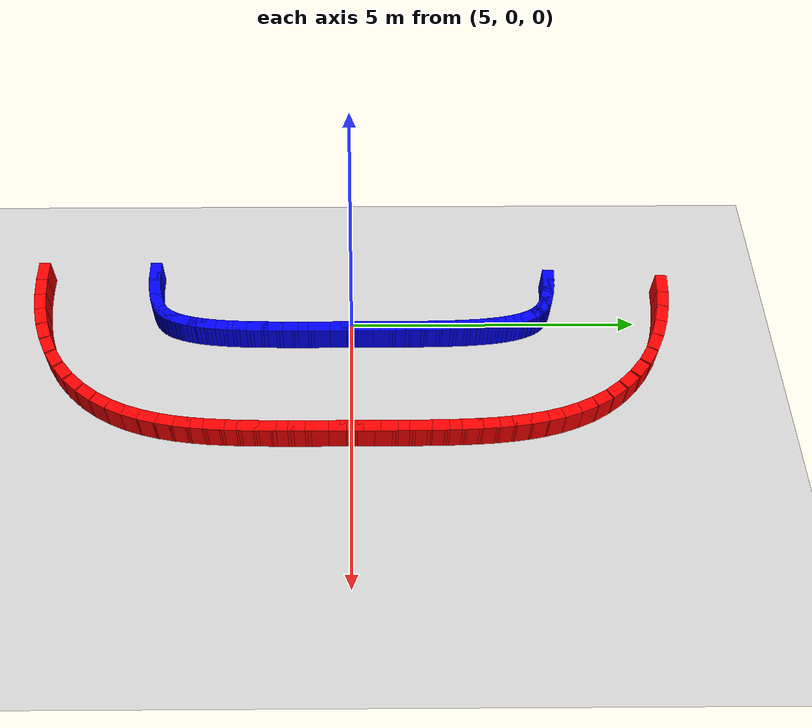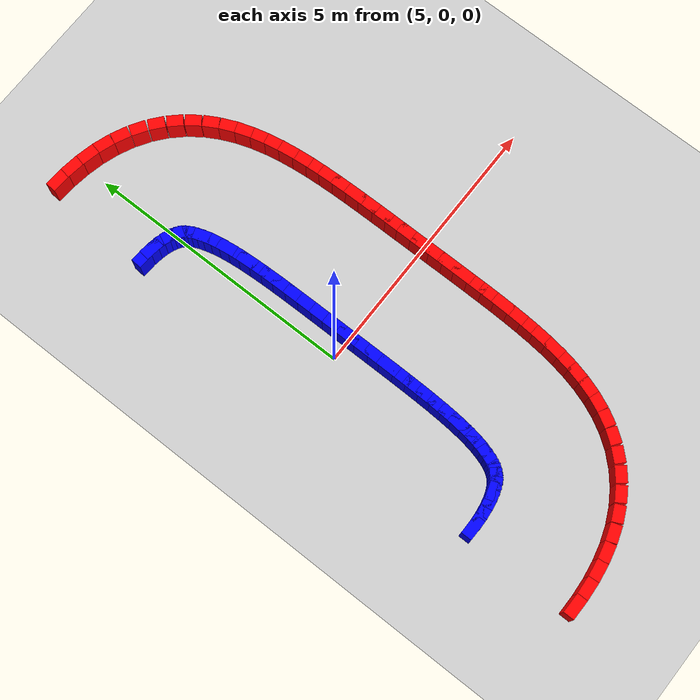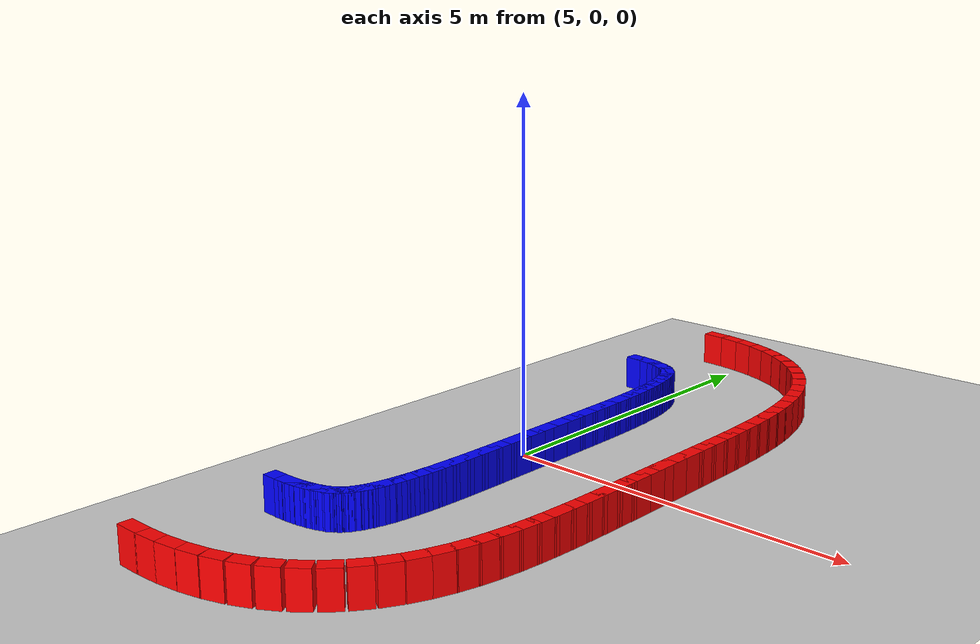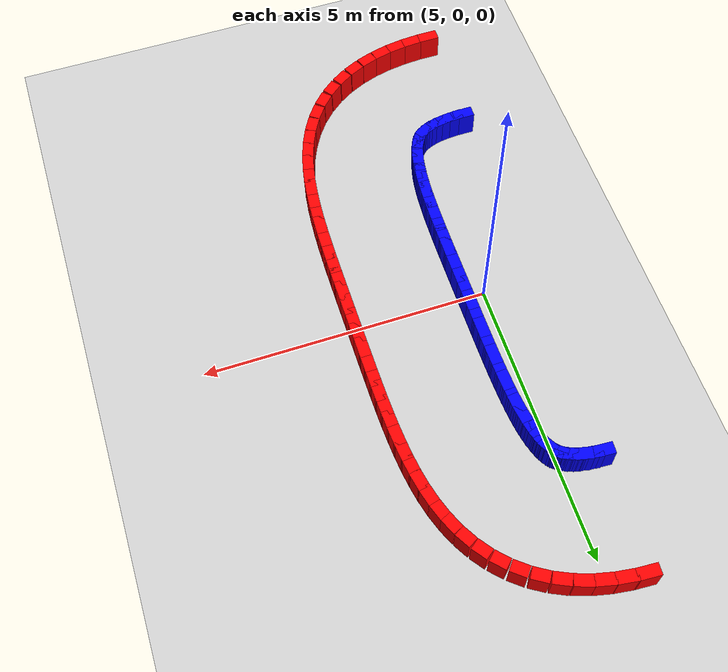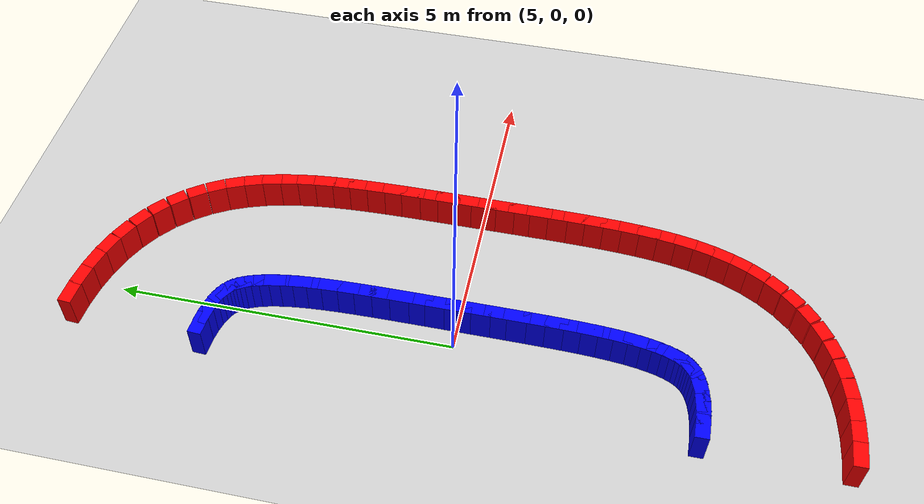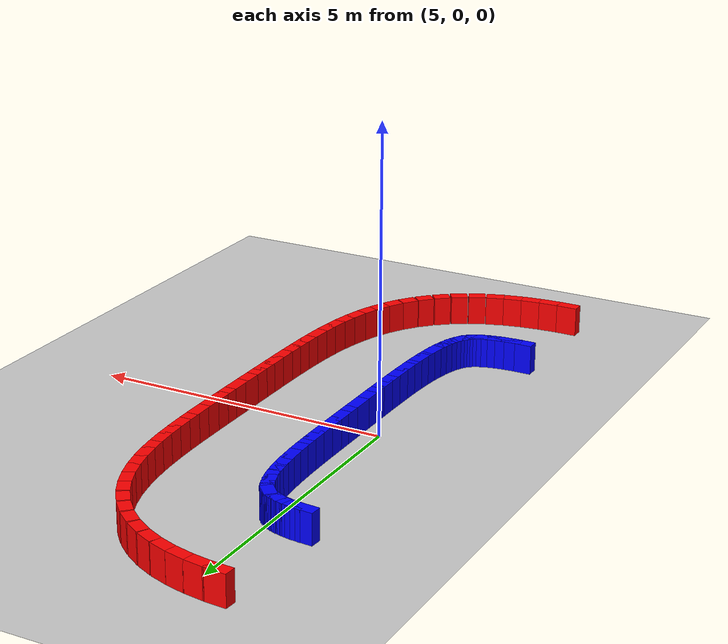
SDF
<sdf version="1.9">
 <world name="kidney_track">
  <model name="ground_plane">
   <static>true</static>
   <link name="link">
    <collision name="collision">
     <geometry><plane><normal>0 0 1</normal><size>100 100</size></plane></geometry>
    </collision>
    <visual name="visual">
     <geometry><plane><normal>0 0 1</normal><size>100 100</size></plane></geometry>
     <material><ambient>0.8 0.8 0.8 1</ambient><diffuse>0.8 0.8 0.8 1</diffuse></material>
    </visual>
   </link>
  </model>
  <model name="track">
   <static>true</static>
   <link name="outer_0">
    <pose>7.3750 0.0000 0.25 0 0 1.5708</pose>
    <collision name="col"><geometry><box><size>0.3826 0.2 0.5</size></box></geometry></collision>
    <visual name="vis">
     <geometry><box><size>0.3826 0.2 0.5</size></box></geometry>
     <material><ambient>1 0 0 1</ambient></material>
    </visual>
   </link>
   <link name="inner_0">
    <pose>5.3750 0.0000 0.25 0 0 1.5708</pose>
    <collision name="col"><geometry><box><size>0.3826 0.2 0.5</size></box></geometry></collision>
    <visual name="vis">
     <geometry><box><size>0.3826 0.2 0.5</size></box></geometry>
     <material><ambient>0 0 1 1</ambient></material>
    </visual>
   </link>
   <link name="outer_1">
    <pose>7.3750 0.2827 0.25 0 0 1.5709</pose>
    <collision name="col"><geometry><box><size>0.3814 0.2 0.5</size></box></geometry></collision>
    <visual name="vis">
     <geometry><box><size>0.3814 0.2 0.5</size></box></geometry>
     <material><ambient>1 0 0 1</ambient></material>
    </visual>
   </link>
   <link name="inner_1">
    <pose>5.3750 0.2824 0.25 0 0 1.5709</pose>
    <collision name="col"><geometry><box><size>0.3814 0.2 0.5</size></box></geometry></collision>
    <visual name="vis">
     <geometry><box><size>0.3814 0.2 0.5</size></box></geometry>
     <material><ambient>0 0 1 1</ambient></material>
    </visual>
   </link>
   <link name="outer_2">
    <pose>7.3749 0.5650 0.25 0 0 1.5718</pose>
    <collision name="col"><geometry><box><size>0.3792 0.2 0.5</size></box></geometry></collision>
    <visual name="vis">
     <geometry><box><size>0.3792 0.2 0.5</size></box></geometry>
     <material><ambient>1 0 0 1</ambient></material>
    </visual>
   </link>
   <link name="inner_2">
    <pose>5.3749 0.5630 0.25 0 0 1.5718</pose>
    <collision name="col"><geometry><box><size>0.3792 0.2 0.5</size></box></geometry></collision>
    <visual name="vis">
     <geometry><box><size>0.3792 0.2 0.5</size></box></geometry>
     <material><ambient>0 0 1 1</ambient></material>
    </visual>
   </link>
   <link name="outer_3">
    <pose>7.3743 0.8466 0.25 0 0 1.5742</pose>
    <collision name="col"><geometry><box><size>0.3759 0.2 0.5</size></box></geometry></collision>
    <visual name="vis">
     <geometry><box><size>0.3759 0.2 0.5</size></box></geometry>
     <material><ambient>1 0 0 1</ambient></material>
    </visual>
   </link>
   <link name="inner_3">
    <pose>5.3743 0.8398 0.25 0 0 1.5742</pose>
    <collision name="col"><geometry><box><size>0.3759 0.2 0.5</size></box></geometry></collision>
    <visual name="vis">
     <geometry><box><size>0.3759 0.2 0.5</size></box></geometry>
     <material><ambient>0 0 1 1</ambient></material>
    </visual>
   </link>
   <link name="outer_4">
    <pose>7.3727 1.1272 0.25 0 0 1.5789</pose>
    <collision name="col"><geometry><box><size>0.3715 0.2 0.5</size></box></geometry></collision>
    <visual name="vis">
     <geometry><box><size>0.3715 0.2 0.5</size></box></geometry>
     <material><ambient>1 0 0 1</ambient></material>
    </visual>
   </link>
   <link name="inner_4">
    <pose>5.3728 1.1110 0.25 0 0 1.5789</pose>
    <collision name="col"><geometry><box><size>0.3715 0.2 0.5</size></box></geometry></collision>
    <visual name="vis">
     <geometry><box><size>0.3715 0.2 0.5</size></box></geometry>
     <material><ambient>0 0 1 1</ambient></material>
    </visual>
   </link>
   <link name="outer_5">
    <pose>7.3695 1.4065 0.25 0 0 1.5867</pose>
    <collision name="col"><geometry><box><size>0.3660 0.2 0.5</size></box></geometry></collision>
    <visual name="vis">
     <geometry><box><size>0.3660 0.2 0.5</size></box></geometry>
     <material><ambient>1 0 0 1</ambient></material>
    </visual>
   </link>
   <link name="inner_5">
    <pose>5.3697 1.3747 0.25 0 0 1.5867</pose>
    <collision name="col"><geometry><box><size>0.3660 0.2 0.5</size></box></geometry></collision>
    <visual name="vis">
     <geometry><box><size>0.3660 0.2 0.5</size></box></geometry>
     <material><ambient>0 0 1 1</ambient></material>
    </visual>
   </link>
   <link name="outer_6">
    <pose>7.3635 1.6844 0.25 0 0 1.5986</pose>
    <collision name="col"><geometry><box><size>0.3596 0.2 0.5</size></box></geometry></collision>
    <visual name="vis">
     <geometry><box><size>0.3596 0.2 0.5</size></box></geometry>
     <material><ambient>1 0 0 1</ambient></material>
    </visual>
   </link>
   <link name="inner_6">
    <pose>5.3643 1.6287 0.25 0 0 1.5986</pose>
    <collision name="col"><geometry><box><size>0.3596 0.2 0.5</size></box></geometry></collision>
    <visual name="vis">
     <geometry><box><size>0.3596 0.2 0.5</size></box></geometry>
     <material><ambient>0 0 1 1</ambient></material>
    </visual>
   </link>
   <link name="outer_7">
    <pose>7.3536 1.9608 0.25 0 0 1.6156</pose>
    <collision name="col"><geometry><box><size>0.3523 0.2 0.5</size></box></geometry></collision>
    <visual name="vis">
     <geometry><box><size>0.3523 0.2 0.5</size></box></geometry>
     <material><ambient>1 0 0 1</ambient></material>
    </visual>
   </link>
   <link name="inner_7">
    <pose>5.3556 1.8712 0.25 0 0 1.6156</pose>
    <collision name="col"><geometry><box><size>0.3523 0.2 0.5</size></box></geometry></collision>
    <visual name="vis">
     <geometry><box><size>0.3523 0.2 0.5</size></box></geometry>
     <material><ambient>0 0 1 1</ambient></material>
    </visual>
   </link>
   <link name="outer_8">
    <pose>7.3383 2.2358 0.25 0 0 1.6387</pose>
    <collision name="col"><geometry><box><size>0.3442 0.2 0.5</size></box></geometry></collision>
    <visual name="vis">
     <geometry><box><size>0.3442 0.2 0.5</size></box></geometry>
     <material><ambient>1 0 0 1</ambient></material>
    </visual>
   </link>
   <link name="inner_8">
    <pose>5.3429 2.1000 0.25 0 0 1.6387</pose>
    <collision name="col"><geometry><box><size>0.3442 0.2 0.5</size></box></geometry></collision>
    <visual name="vis">
     <geometry><box><size>0.3442 0.2 0.5</size></box></geometry>
     <material><ambient>0 0 1 1</ambient></material>
    </visual>
   </link>
   <link name="outer_9">
    <pose>7.3156 2.5096 0.25 0 0 1.6693</pose>
    <collision name="col"><geometry><box><size>0.3354 0.2 0.5</size></box></geometry></collision>
    <visual name="vis">
     <geometry><box><size>0.3354 0.2 0.5</size></box></geometry>
     <material><ambient>1 0 0 1</ambient></material>
    </visual>
   </link>
   <link name="inner_9">
    <pose>5.3253 2.3129 0.25 0 0 1.6693</pose>
    <collision name="col"><geometry><box><size>0.3354 0.2 0.5</size></box></geometry></collision>
    <visual name="vis">
     <geometry><box><size>0.3354 0.2 0.5</size></box></geometry>
     <material><ambient>0 0 1 1</ambient></material>
    </visual>
   </link>
   <link name="outer_10">
    <pose>7.2834 2.7825 0.25 0 0 1.7087</pose>
    <collision name="col"><geometry><box><size>0.3263 0.2 0.5</size></box></geometry></collision>
    <visual name="vis">
     <geometry><box><size>0.3263 0.2 0.5</size></box></geometry>
     <material><ambient>1 0 0 1</ambient></material>
    </visual>
   </link>
   <link name="inner_10">
    <pose>5.3024 2.5076 0.25 0 0 1.7087</pose>
    <collision name="col"><geometry><box><size>0.3263 0.2 0.5</size></box></geometry></collision>
    <visual name="vis">
     <geometry><box><size>0.3263 0.2 0.5</size></box></geometry>
     <material><ambient>0 0 1 1</ambient></material>
    </visual>
   </link>
   <link name="outer_11">
    <pose>7.2390 3.0550 0.25 0 0 1.7584</pose>
    <collision name="col"><geometry><box><size>0.3172 0.2 0.5</size></box></geometry></collision>
    <visual name="vis">
     <geometry><box><size>0.3172 0.2 0.5</size></box></geometry>
     <material><ambient>1 0 0 1</ambient></material>
    </visual>
   </link>
   <link name="inner_11">
    <pose>5.2741 2.6819 0.25 0 0 1.7584</pose>
    <collision name="col"><geometry><box><size>0.3172 0.2 0.5</size></box></geometry></collision>
    <visual name="vis">
     <geometry><box><size>0.3172 0.2 0.5</size></box></geometry>
     <material><ambient>0 0 1 1</ambient></material>
    </visual>
   </link>
   <link name="outer_12">
    <pose>7.1788 3.3271 0.25 0 0 1.8201</pose>
    <collision name="col"><geometry><box><size>0.3083 0.2 0.5</size></box></geometry></collision>
    <visual name="vis">
     <geometry><box><size>0.3083 0.2 0.5</size></box></geometry>
     <material><ambient>1 0 0 1</ambient></material>
    </visual>
   </link>
   <link name="inner_12">
    <pose>5.2406 2.8338 0.25 0 0 1.8201</pose>
    <collision name="col"><geometry><box><size>0.3083 0.2 0.5</size></box></geometry></collision>
    <visual name="vis">
     <geometry><box><size>0.3083 0.2 0.5</size></box></geometry>
     <material><ambient>0 0 1 1</ambient></material>
    </visual>
   </link>
   <link name="outer_13">
    <pose>7.0990 3.5988 0.25 0 0 1.8949</pose>
    <collision name="col"><geometry><box><size>0.3003 0.2 0.5</size></box></geometry></collision>
    <visual name="vis">
     <geometry><box><size>0.3003 0.2 0.5</size></box></geometry>
     <material><ambient>1 0 0 1</ambient></material>
    </visual>
   </link>
   <link name="inner_13">
    <pose>5.2032 2.9619 0.25 0 0 1.8949</pose>
    <collision name="col"><geometry><box><size>0.3003 0.2 0.5</size></box></geometry></collision>
    <visual name="vis">
     <geometry><box><size>0.3003 0.2 0.5</size></box></geometry>
     <material><ambient>0 0 1 1</ambient></material>
    </visual>
   </link>
   <link name="outer_14">
    <pose>6.9951 3.8688 0.25 0 0 1.9839</pose>
    <collision name="col"><geometry><box><size>0.2937 0.2 0.5</size></box></geometry></collision>
    <visual name="vis">
     <geometry><box><size>0.2937 0.2 0.5</size></box></geometry>
     <material><ambient>1 0 0 1</ambient></material>
    </visual>
   </link>
   <link name="inner_14">
    <pose>5.1633 3.0659 0.25 0 0 1.9839</pose>
    <collision name="col"><geometry><box><size>0.2937 0.2 0.5</size></box></geometry></collision>
    <visual name="vis">
     <geometry><box><size>0.2937 0.2 0.5</size></box></geometry>
     <material><ambient>0 0 1 1</ambient></material>
    </visual>
   </link>
   <link name="outer_15">
    <pose>6.8624 4.1341 0.25 0 0 2.0869</pose>
    <collision name="col"><geometry><box><size>0.2891 0.2 0.5</size></box></geometry></collision>
    <visual name="vis">
     <geometry><box><size>0.2891 0.2 0.5</size></box></geometry>
     <material><ambient>1 0 0 1</ambient></material>
    </visual>
   </link>
   <link name="inner_15">
    <pose>5.1229 3.1471 0.25 0 0 2.0869</pose>
    <collision name="col"><geometry><box><size>0.2891 0.2 0.5</size></box></geometry></collision>
    <visual name="vis">
     <geometry><box><size>0.2891 0.2 0.5</size></box></geometry>
     <material><ambient>0 0 1 1</ambient></material>
    </visual>
   </link>
   <link name="outer_16">
    <pose>6.6973 4.3899 0.25 0 0 2.2023</pose>
    <collision name="col"><geometry><box><size>0.2871 0.2 0.5</size></box></geometry></collision>
    <visual name="vis">
     <geometry><box><size>0.2871 0.2 0.5</size></box></geometry>
     <material><ambient>1 0 0 1</ambient></material>
    </visual>
   </link>
   <link name="inner_16">
    <pose>5.0831 3.2091 0.25 0 0 2.2023</pose>
    <collision name="col"><geometry><box><size>0.2871 0.2 0.5</size></box></geometry></collision>
    <visual name="vis">
     <geometry><box><size>0.2871 0.2 0.5</size></box></geometry>
     <material><ambient>0 0 1 1</ambient></material>
    </visual>
   </link>
   <link name="outer_17">
    <pose>6.4983 4.6293 0.25 0 0 2.3267</pose>
    <collision name="col"><geometry><box><size>0.2882 0.2 0.5</size></box></geometry></collision>
    <visual name="vis">
     <geometry><box><size>0.2882 0.2 0.5</size></box></geometry>
     <material><ambient>1 0 0 1</ambient></material>
    </visual>
   </link>
   <link name="inner_17">
    <pose>5.0431 3.2574 0.25 0 0 2.3267</pose>
    <collision name="col"><geometry><box><size>0.2882 0.2 0.5</size></box></geometry></collision>
    <visual name="vis">
     <geometry><box><size>0.2882 0.2 0.5</size></box></geometry>
     <material><ambient>0 0 1 1</ambient></material>
    </visual>
   </link>
   <link name="outer_18">
    <pose>6.2669 4.8452 0.25 0 0 2.4551</pose>
    <collision name="col"><geometry><box><size>0.2926 0.2 0.5</size></box></geometry></collision>
    <visual name="vis">
     <geometry><box><size>0.2926 0.2 0.5</size></box></geometry>
     <material><ambient>1 0 0 1</ambient></material>
    </visual>
   </link>
   <link name="inner_18">
    <pose>4.9993 3.2982 0.25 0 0 2.4551</pose>
    <collision name="col"><geometry><box><size>0.2926 0.2 0.5</size></box></geometry></collision>
    <visual name="vis">
     <geometry><box><size>0.2926 0.2 0.5</size></box></geometry>
     <material><ambient>0 0 1 1</ambient></material>
    </visual>
   </link>
   <link name="outer_19">
    <pose>6.0076 5.0314 0.25 0 0 2.5819</pose>
    <collision name="col"><geometry><box><size>0.3003 0.2 0.5</size></box></geometry></collision>
    <visual name="vis">
     <geometry><box><size>0.3003 0.2 0.5</size></box></geometry>
     <material><ambient>1 0 0 1</ambient></material>
    </visual>
   </link>
   <link name="inner_19">
    <pose>4.9457 3.3366 0.25 0 0 2.5819</pose>
    <collision name="col"><geometry><box><size>0.3003 0.2 0.5</size></box></geometry></collision>
    <visual name="vis">
     <geometry><box><size>0.3003 0.2 0.5</size></box></geometry>
     <material><ambient>0 0 1 1</ambient></material>
    </visual>
   </link>
   <link name="outer_20">
    <pose>5.7262 5.1847 0.25 0 0 2.7021</pose>
    <collision name="col"><geometry><box><size>0.3111 0.2 0.5</size></box></geometry></collision>
    <visual name="vis">
     <geometry><box><size>0.3111 0.2 0.5</size></box></geometry>
     <material><ambient>1 0 0 1</ambient></material>
    </visual>
   </link>
   <link name="inner_20">
    <pose>4.8752 3.3748 0.25 0 0 2.7021</pose>
    <collision name="col"><geometry><box><size>0.3111 0.2 0.5</size></box></geometry></collision>
    <visual name="vis">
     <geometry><box><size>0.3111 0.2 0.5</size></box></geometry>
     <material><ambient>0 0 1 1</ambient></material>
    </visual>
   </link>
   <link name="outer_21">
    <pose>5.4283 5.3049 0.25 0 0 2.8123</pose>
    <collision name="col"><geometry><box><size>0.3244 0.2 0.5</size></box></geometry></collision>
    <visual name="vis">
     <geometry><box><size>0.3244 0.2 0.5</size></box></geometry>
     <material><ambient>1 0 0 1</ambient></material>
    </visual>
   </link>
   <link name="inner_21">
    <pose>4.7816 3.4124 0.25 0 0 2.8123</pose>
    <collision name="col"><geometry><box><size>0.3244 0.2 0.5</size></box></geometry></collision>
    <visual name="vis">
     <geometry><box><size>0.3244 0.2 0.5</size></box></geometry>
     <material><ambient>0 0 1 1</ambient></material>
    </visual>
   </link>
   <link name="outer_22">
    <pose>5.1177 5.3938 0.25 0 0 2.9110</pose>
    <collision name="col"><geometry><box><size>0.3397 0.2 0.5</size></box></geometry></collision>
    <visual name="vis">
     <geometry><box><size>0.3397 0.2 0.5</size></box></geometry>
     <material><ambient>1 0 0 1</ambient></material>
    </visual>
   </link>
   <link name="inner_22">
    <pose>4.6607 3.4468 0.25 0 0 2.9110</pose>
    <collision name="col"><geometry><box><size>0.3397 0.2 0.5</size></box></geometry></collision>
    <visual name="vis">
     <geometry><box><size>0.3397 0.2 0.5</size></box></geometry>
     <material><ambient>0 0 1 1</ambient></material>
    </visual>
   </link>
   <link name="outer_23">
    <pose>4.7966 5.4542 0.25 0 0 2.9982</pose>
    <collision name="col"><geometry><box><size>0.3564 0.2 0.5</size></box></geometry></collision>
    <visual name="vis">
     <geometry><box><size>0.3564 0.2 0.5</size></box></geometry>
     <material><ambient>1 0 0 1</ambient></material>
    </visual>
   </link>
   <link name="inner_23">
    <pose>4.5107 3.4748 0.25 0 0 2.9982</pose>
    <collision name="col"><geometry><box><size>0.3564 0.2 0.5</size></box></geometry></collision>
    <visual name="vis">
     <geometry><box><size>0.3564 0.2 0.5</size></box></geometry>
     <material><ambient>0 0 1 1</ambient></material>
    </visual>
   </link>
   <link name="outer_24">
    <pose>4.4657 5.4889 0.25 0 0 3.0746</pose>
    <collision name="col"><geometry><box><size>0.3738 0.2 0.5</size></box></geometry></collision>
    <visual name="vis">
     <geometry><box><size>0.3738 0.2 0.5</size></box></geometry>
     <material><ambient>1 0 0 1</ambient></material>
    </visual>
   </link>
   <link name="inner_24">
    <pose>4.3317 3.4934 0.25 0 0 3.0746</pose>
    <collision name="col"><geometry><box><size>0.3738 0.2 0.5</size></box></geometry></collision>
    <visual name="vis">
     <geometry><box><size>0.3738 0.2 0.5</size></box></geometry>
     <material><ambient>0 0 1 1</ambient></material>
    </visual>
   </link>
   <link name="outer_75">
    <pose>4.1250 -5.5000 0.25 0 0 0.0000</pose>
    <collision name="col"><geometry><box><size>0.3738 0.2 0.5</size></box></geometry></collision>
    <visual name="vis">
     <geometry><box><size>0.3738 0.2 0.5</size></box></geometry>
     <material><ambient>1 0 0 1</ambient></material>
    </visual>
   </link>
   <link name="inner_75">
    <pose>4.1250 -3.5000 0.25 0 0 0.0000</pose>
    <collision name="col"><geometry><box><size>0.3738 0.2 0.5</size></box></geometry></collision>
    <visual name="vis">
     <geometry><box><size>0.3738 0.2 0.5</size></box></geometry>
     <material><ambient>0 0 1 1</ambient></material>
    </visual>
   </link>
   <link name="outer_76">
    <pose>4.4657 -5.4889 0.25 0 0 0.0670</pose>
    <collision name="col"><geometry><box><size>0.3564 0.2 0.5</size></box></geometry></collision>
    <visual name="vis">
     <geometry><box><size>0.3564 0.2 0.5</size></box></geometry>
     <material><ambient>1 0 0 1</ambient></material>
    </visual>
   </link>
   <link name="inner_76">
    <pose>4.3317 -3.4934 0.25 0 0 0.0670</pose>
    <collision name="col"><geometry><box><size>0.3564 0.2 0.5</size></box></geometry></collision>
    <visual name="vis">
     <geometry><box><size>0.3564 0.2 0.5</size></box></geometry>
     <material><ambient>0 0 1 1</ambient></material>
    </visual>
   </link>
   <link name="outer_77">
    <pose>4.7966 -5.4542 0.25 0 0 0.1434</pose>
    <collision name="col"><geometry><box><size>0.3397 0.2 0.5</size></box></geometry></collision>
    <visual name="vis">
     <geometry><box><size>0.3397 0.2 0.5</size></box></geometry>
     <material><ambient>1 0 0 1</ambient></material>
    </visual>
   </link>
   <link name="inner_77">
    <pose>4.5107 -3.4748 0.25 0 0 0.1434</pose>
    <collision name="col"><geometry><box><size>0.3397 0.2 0.5</size></box></geometry></collision>
    <visual name="vis">
     <geometry><box><size>0.3397 0.2 0.5</size></box></geometry>
     <material><ambient>0 0 1 1</ambient></material>
    </visual>
   </link>
   <link name="outer_78">
    <pose>5.1177 -5.3938 0.25 0 0 0.2306</pose>
    <collision name="col"><geometry><box><size>0.3244 0.2 0.5</size></box></geometry></collision>
    <visual name="vis">
     <geometry><box><size>0.3244 0.2 0.5</size></box></geometry>
     <material><ambient>1 0 0 1</ambient></material>
    </visual>
   </link>
   <link name="inner_78">
    <pose>4.6607 -3.4468 0.25 0 0 0.2306</pose>
    <collision name="col"><geometry><box><size>0.3244 0.2 0.5</size></box></geometry></collision>
    <visual name="vis">
     <geometry><box><size>0.3244 0.2 0.5</size></box></geometry>
     <material><ambient>0 0 1 1</ambient></material>
    </visual>
   </link>
   <link name="outer_79">
    <pose>5.4283 -5.3049 0.25 0 0 0.3293</pose>
    <collision name="col"><geometry><box><size>0.3111 0.2 0.5</size></box></geometry></collision>
    <visual name="vis">
     <geometry><box><size>0.3111 0.2 0.5</size></box></geometry>
     <material><ambient>1 0 0 1</ambient></material>
    </visual>
   </link>
   <link name="inner_79">
    <pose>4.7816 -3.4124 0.25 0 0 0.3293</pose>
    <collision name="col"><geometry><box><size>0.3111 0.2 0.5</size></box></geometry></collision>
    <visual name="vis">
     <geometry><box><size>0.3111 0.2 0.5</size></box></geometry>
     <material><ambient>0 0 1 1</ambient></material>
    </visual>
   </link>
   <link name="outer_80">
    <pose>5.7262 -5.1847 0.25 0 0 0.4395</pose>
    <collision name="col"><geometry><box><size>0.3003 0.2 0.5</size></box></geometry></collision>
    <visual name="vis">
     <geometry><box><size>0.3003 0.2 0.5</size></box></geometry>
     <material><ambient>1 0 0 1</ambient></material>
    </visual>
   </link>
   <link name="inner_80">
    <pose>4.8752 -3.3748 0.25 0 0 0.4395</pose>
    <collision name="col"><geometry><box><size>0.3003 0.2 0.5</size></box></geometry></collision>
    <visual name="vis">
     <geometry><box><size>0.3003 0.2 0.5</size></box></geometry>
     <material><ambient>0 0 1 1</ambient></material>
    </visual>
   </link>
   <link name="outer_81">
    <pose>6.0076 -5.0314 0.25 0 0 0.5597</pose>
    <collision name="col"><geometry><box><size>0.2926 0.2 0.5</size></box></geometry></collision>
    <visual name="vis">
     <geometry><box><size>0.2926 0.2 0.5</size></box></geometry>
     <material><ambient>1 0 0 1</ambient></material>
    </visual>
   </link>
   <link name="inner_81">
    <pose>4.9457 -3.3366 0.25 0 0 0.5597</pose>
    <collision name="col"><geometry><box><size>0.2926 0.2 0.5</size></box></geometry></collision>
    <visual name="vis">
     <geometry><box><size>0.2926 0.2 0.5</size></box></geometry>
     <material><ambient>0 0 1 1</ambient></material>
    </visual>
   </link>
   <link name="outer_82">
    <pose>6.2669 -4.8452 0.25 0 0 0.6865</pose>
    <collision name="col"><geometry><box><size>0.2882 0.2 0.5</size></box></geometry></collision>
    <visual name="vis">
     <geometry><box><size>0.2882 0.2 0.5</size></box></geometry>
     <material><ambient>1 0 0 1</ambient></material>
    </visual>
   </link>
   <link name="inner_82">
    <pose>4.9993 -3.2982 0.25 0 0 0.6865</pose>
    <collision name="col"><geometry><box><size>0.2882 0.2 0.5</size></box></geometry></collision>
    <visual name="vis">
     <geometry><box><size>0.2882 0.2 0.5</size></box></geometry>
     <material><ambient>0 0 1 1</ambient></material>
    </visual>
   </link>
   <link name="outer_83">
    <pose>6.4983 -4.6293 0.25 0 0 0.8149</pose>
    <collision name="col"><geometry><box><size>0.2871 0.2 0.5</size></box></geometry></collision>
    <visual name="vis">
     <geometry><box><size>0.2871 0.2 0.5</size></box></geometry>
     <material><ambient>1 0 0 1</ambient></material>
    </visual>
   </link>
   <link name="inner_83">
    <pose>5.0431 -3.2574 0.25 0 0 0.8149</pose>
    <collision name="col"><geometry><box><size>0.2871 0.2 0.5</size></box></geometry></collision>
    <visual name="vis">
     <geometry><box><size>0.2871 0.2 0.5</size></box></geometry>
     <material><ambient>0 0 1 1</ambient></material>
    </visual>
   </link>
   <link name="outer_84">
    <pose>6.6973 -4.3899 0.25 0 0 0.9393</pose>
    <collision name="col"><geometry><box><size>0.2891 0.2 0.5</size></box></geometry></collision>
    <visual name="vis">
     <geometry><box><size>0.2891 0.2 0.5</size></box></geometry>
     <material><ambient>1 0 0 1</ambient></material>
    </visual>
   </link>
   <link name="inner_84">
    <pose>5.0831 -3.2091 0.25 0 0 0.9393</pose>
    <collision name="col"><geometry><box><size>0.2891 0.2 0.5</size></box></geometry></collision>
    <visual name="vis">
     <geometry><box><size>0.2891 0.2 0.5</size></box></geometry>
     <material><ambient>0 0 1 1</ambient></material>
    </visual>
   </link>
   <link name="outer_85">
    <pose>6.8624 -4.1341 0.25 0 0 1.0547</pose>
    <collision name="col"><geometry><box><size>0.2937 0.2 0.5</size></box></geometry></collision>
    <visual name="vis">
     <geometry><box><size>0.2937 0.2 0.5</size></box></geometry>
     <material><ambient>1 0 0 1</ambient></material>
    </visual>
   </link>
   <link name="inner_85">
    <pose>5.1229 -3.1471 0.25 0 0 1.0547</pose>
    <collision name="col"><geometry><box><size>0.2937 0.2 0.5</size></box></geometry></collision>
    <visual name="vis">
     <geometry><box><size>0.2937 0.2 0.5</size></box></geometry>
     <material><ambient>0 0 1 1</ambient></material>
    </visual>
   </link>
   <link name="outer_86">
    <pose>6.9951 -3.8688 0.25 0 0 1.1577</pose>
    <collision name="col"><geometry><box><size>0.3003 0.2 0.5</size></box></geometry></collision>
    <visual name="vis">
     <geometry><box><size>0.3003 0.2 0.5</size></box></geometry>
     <material><ambient>1 0 0 1</ambient></material>
    </visual>
   </link>
   <link name="inner_86">
    <pose>5.1633 -3.0659 0.25 0 0 1.1577</pose>
    <collision name="col"><geometry><box><size>0.3003 0.2 0.5</size></box></geometry></collision>
    <visual name="vis">
     <geometry><box><size>0.3003 0.2 0.5</size></box></geometry>
     <material><ambient>0 0 1 1</ambient></material>
    </visual>
   </link>
   <link name="outer_87">
    <pose>7.0990 -3.5988 0.25 0 0 1.2467</pose>
    <collision name="col"><geometry><box><size>0.3083 0.2 0.5</size></box></geometry></collision>
    <visual name="vis">
     <geometry><box><size>0.3083 0.2 0.5</size></box></geometry>
     <material><ambient>1 0 0 1</ambient></material>
    </visual>
   </link>
   <link name="inner_87">
    <pose>5.2032 -2.9619 0.25 0 0 1.2467</pose>
    <collision name="col"><geometry><box><size>0.3083 0.2 0.5</size></box></geometry></collision>
    <visual name="vis">
     <geometry><box><size>0.3083 0.2 0.5</size></box></geometry>
     <material><ambient>0 0 1 1</ambient></material>
    </visual>
   </link>
   <link name="outer_88">
    <pose>7.1788 -3.3271 0.25 0 0 1.3215</pose>
    <collision name="col"><geometry><box><size>0.3172 0.2 0.5</size></box></geometry></collision>
    <visual name="vis">
     <geometry><box><size>0.3172 0.2 0.5</size></box></geometry>
     <material><ambient>1 0 0 1</ambient></material>
    </visual>
   </link>
   <link name="inner_88">
    <pose>5.2406 -2.8338 0.25 0 0 1.3215</pose>
    <collision name="col"><geometry><box><size>0.3172 0.2 0.5</size></box></geometry></collision>
    <visual name="vis">
     <geometry><box><size>0.3172 0.2 0.5</size></box></geometry>
     <material><ambient>0 0 1 1</ambient></material>
    </visual>
   </link>
   <link name="outer_89">
    <pose>7.2390 -3.0550 0.25 0 0 1.3832</pose>
    <collision name="col"><geometry><box><size>0.3263 0.2 0.5</size></box></geometry></collision>
    <visual name="vis">
     <geometry><box><size>0.3263 0.2 0.5</size></box></geometry>
     <material><ambient>1 0 0 1</ambient></material>
    </visual>
   </link>
   <link name="inner_89">
    <pose>5.2741 -2.6819 0.25 0 0 1.3832</pose>
    <collision name="col"><geometry><box><size>0.3263 0.2 0.5</size></box></geometry></collision>
    <visual name="vis">
     <geometry><box><size>0.3263 0.2 0.5</size></box></geometry>
     <material><ambient>0 0 1 1</ambient></material>
    </visual>
   </link>
   <link name="outer_90">
    <pose>7.2834 -2.7825 0.25 0 0 1.4329</pose>
    <collision name="col"><geometry><box><size>0.3354 0.2 0.5</size></box></geometry></collision>
    <visual name="vis">
     <geometry><box><size>0.3354 0.2 0.5</size></box></geometry>
     <material><ambient>1 0 0 1</ambient></material>
    </visual>
   </link>
   <link name="inner_90">
    <pose>5.3024 -2.5076 0.25 0 0 1.4329</pose>
    <collision name="col"><geometry><box><size>0.3354 0.2 0.5</size></box></geometry></collision>
    <visual name="vis">
     <geometry><box><size>0.3354 0.2 0.5</size></box></geometry>
     <material><ambient>0 0 1 1</ambient></material>
    </visual>
   </link>
   <link name="outer_91">
    <pose>7.3156 -2.5096 0.25 0 0 1.4723</pose>
    <collision name="col"><geometry><box><size>0.3442 0.2 0.5</size></box></geometry></collision>
    <visual name="vis">
     <geometry><box><size>0.3442 0.2 0.5</size></box></geometry>
     <material><ambient>1 0 0 1</ambient></material>
    </visual>
   </link>
   <link name="inner_91">
    <pose>5.3253 -2.3129 0.25 0 0 1.4723</pose>
    <collision name="col"><geometry><box><size>0.3442 0.2 0.5</size></box></geometry></collision>
    <visual name="vis">
     <geometry><box><size>0.3442 0.2 0.5</size></box></geometry>
     <material><ambient>0 0 1 1</ambient></material>
    </visual>
   </link>
   <link name="outer_92">
    <pose>7.3383 -2.2358 0.25 0 0 1.5029</pose>
    <collision name="col"><geometry><box><size>0.3523 0.2 0.5</size></box></geometry></collision>
    <visual name="vis">
     <geometry><box><size>0.3523 0.2 0.5</size></box></geometry>
     <material><ambient>1 0 0 1</ambient></material>
    </visual>
   </link>
   <link name="inner_92">
    <pose>5.3429 -2.1000 0.25 0 0 1.5029</pose>
    <collision name="col"><geometry><box><size>0.3523 0.2 0.5</size></box></geometry></collision>
    <visual name="vis">
     <geometry><box><size>0.3523 0.2 0.5</size></box></geometry>
     <material><ambient>0 0 1 1</ambient></material>
    </visual>
   </link>
   <link name="outer_93">
    <pose>7.3536 -1.9608 0.25 0 0 1.5260</pose>
    <collision name="col"><geometry><box><size>0.3596 0.2 0.5</size></box></geometry></collision>
    <visual name="vis">
     <geometry><box><size>0.3596 0.2 0.5</size></box></geometry>
     <material><ambient>1 0 0 1</ambient></material>
    </visual>
   </link>
   <link name="inner_93">
    <pose>5.3556 -1.8712 0.25 0 0 1.5260</pose>
    <collision name="col"><geometry><box><size>0.3596 0.2 0.5</size></box></geometry></collision>
    <visual name="vis">
     <geometry><box><size>0.3596 0.2 0.5</size></box></geometry>
     <material><ambient>0 0 1 1</ambient></material>
    </visual>
   </link>
   <link name="outer_94">
    <pose>7.3635 -1.6844 0.25 0 0 1.5430</pose>
    <collision name="col"><geometry><box><size>0.3660 0.2 0.5</size></box></geometry></collision>
    <visual name="vis">
     <geometry><box><size>0.3660 0.2 0.5</size></box></geometry>
     <material><ambient>1 0 0 1</ambient></material>
    </visual>
   </link>
   <link name="inner_94">
    <pose>5.3643 -1.6287 0.25 0 0 1.5430</pose>
    <collision name="col"><geometry><box><size>0.3660 0.2 0.5</size></box></geometry></collision>
    <visual name="vis">
     <geometry><box><size>0.3660 0.2 0.5</size></box></geometry>
     <material><ambient>0 0 1 1</ambient></material>
    </visual>
   </link>
   <link name="outer_95">
    <pose>7.3695 -1.4065 0.25 0 0 1.5549</pose>
    <collision name="col"><geometry><box><size>0.3715 0.2 0.5</size></box></geometry></collision>
    <visual name="vis">
     <geometry><box><size>0.3715 0.2 0.5</size></box></geometry>
     <material><ambient>1 0 0 1</ambient></material>
    </visual>
   </link>
   <link name="inner_95">
    <pose>5.3697 -1.3747 0.25 0 0 1.5549</pose>
    <collision name="col"><geometry><box><size>0.3715 0.2 0.5</size></box></geometry></collision>
    <visual name="vis">
     <geometry><box><size>0.3715 0.2 0.5</size></box></geometry>
     <material><ambient>0 0 1 1</ambient></material>
    </visual>
   </link>
   <link name="outer_96">
    <pose>7.3727 -1.1272 0.25 0 0 1.5627</pose>
    <collision name="col"><geometry><box><size>0.3759 0.2 0.5</size></box></geometry></collision>
    <visual name="vis">
     <geometry><box><size>0.3759 0.2 0.5</size></box></geometry>
     <material><ambient>1 0 0 1</ambient></material>
    </visual>
   </link>
   <link name="inner_96">
    <pose>5.3728 -1.1110 0.25 0 0 1.5627</pose>
    <collision name="col"><geometry><box><size>0.3759 0.2 0.5</size></box></geometry></collision>
    <visual name="vis">
     <geometry><box><size>0.3759 0.2 0.5</size></box></geometry>
     <material><ambient>0 0 1 1</ambient></material>
    </visual>
   </link>
   <link name="outer_97">
    <pose>7.3743 -0.8466 0.25 0 0 1.5674</pose>
    <collision name="col"><geometry><box><size>0.3792 0.2 0.5</size></box></geometry></collision>
    <visual name="vis">
     <geometry><box><size>0.3792 0.2 0.5</size></box></geometry>
     <material><ambient>1 0 0 1</ambient></material>
    </visual>
   </link>
   <link name="inner_97">
    <pose>5.3743 -0.8398 0.25 0 0 1.5674</pose>
    <collision name="col"><geometry><box><size>0.3792 0.2 0.5</size></box></geometry></collision>
    <visual name="vis">
     <geometry><box><size>0.3792 0.2 0.5</size></box></geometry>
     <material><ambient>0 0 1 1</ambient></material>
    </visual>
   </link>
   <link name="outer_98">
    <pose>7.3749 -0.5650 0.25 0 0 1.5698</pose>
    <collision name="col"><geometry><box><size>0.3814 0.2 0.5</size></box></geometry></collision>
    <visual name="vis">
     <geometry><box><size>0.3814 0.2 0.5</size></box></geometry>
     <material><ambient>1 0 0 1</ambient></material>
    </visual>
   </link>
   <link name="inner_98">
    <pose>5.3749 -0.5630 0.25 0 0 1.5698</pose>
    <collision name="col"><geometry><box><size>0.3814 0.2 0.5</size></box></geometry></collision>
    <visual name="vis">
     <geometry><box><size>0.3814 0.2 0.5</size></box></geometry>
     <material><ambient>0 0 1 1</ambient></material>
    </visual>
   </link>
   <link name="outer_99">
    <pose>7.3750 -0.2827 0.25 0 0 1.5707</pose>
    <collision name="col"><geometry><box><size>0.3826 0.2 0.5</size></box></geometry></collision>
    <visual name="vis">
     <geometry><box><size>0.3826 0.2 0.5</size></box></geometry>
     <material><ambient>1 0 0 1</ambient></material>
    </visual>
   </link>
   <link name="inner_99">
    <pose>5.3750 -0.2824 0.25 0 0 1.5707</pose>
    <collision name="col"><geometry><box><size>0.3826 0.2 0.5</size></box></geometry></collision>
    <visual name="vis">
     <geometry><box><size>0.3826 0.2 0.5</size></box></geometry>
     <material><ambient>0 0 1 1</ambient></material>
    </visual>
   </link>
  </model>
 </world>
</sdf>
